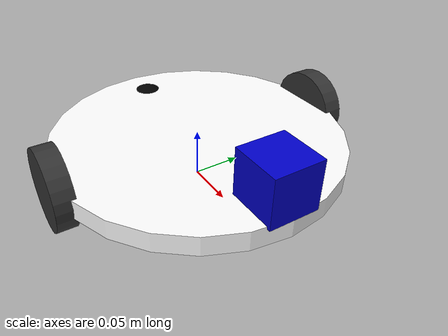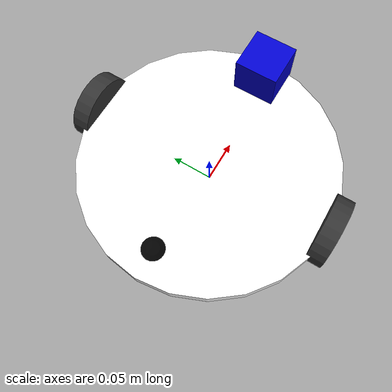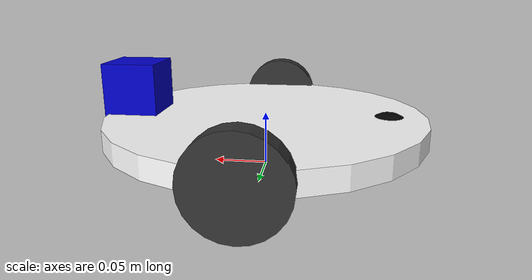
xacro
<?xml version="1.0"?>
<robot xmlns:xacro="http://www.ros.org/wiki/xacro" name="differential_wheeled_robot">
    <xacro:include filename="$(find mastering_ros_robot_description_pkg)/urdf/wheel.urdf.xacro"/>

    <!-- Defining the colors used in this robot -->
    <material name="Black">
        <color rgba="0.0 0.0 0.0 1.0"/>
    </material>

    <material name="Red">
        <color rgba="0.8 0.0 0.0 1.0"/>
    </material>

    <material name="White">
        <color rgba="1.0 1.0 1.0 1.0"/>
    </material>

    <material name="Blue">
        <color rgba="0.0 0.0 0.8 1.0"/>
    </material>

    <!-- PROPERTY LIST -->
    <!-- All units in m-kg-s-radians unit system -->
    <xacro:property name="M_PI" value="3.1415926535897931"/>
    <xacro:property name="M_PI_2" value="1.570796327"/>
    <xacro:property name="DEG_TO_RAD" value="0.017453293"/>

    <!-- Main body radius and height -->
    <!-- Main Body Cylinder base -->
    <xacro:property name="base_height" value="0.02"/>
    <xacro:property name="base_radius" value="0.15"/>
    <xacro:property name="base_mass" value="5"/>

    <!-- caster wheel radius and height -->
    <!-- caster wheel mass -->
    <xacro:property name="caster_f_height" value="0.04"/>
    <xacro:property name="caster_f_radius" value="0.025"/>
    <xacro:property name="caster_f_mass" value="0.5"/>

    <!-- caster wheel radius and height -->
    <!-- caster wheel mass -->
    <xacro:property name="caster_b_height" value="0.04"/>
    <xacro:property name="caster_b_radius" value="0.025"/>
    <xacro:property name="caster_b_mass" value="0.5"/>

    <!-- Wheels -->
    <xacro:property name="wheel_mass" value="2.5"/>

    <xacro:property name="base_x_origin_to_wheel_origin" value="0.25"/>
    <xacro:property name="base_y_origin_to_wheel_origin" value="0.3"/>
    <xacro:property name="base_z_origin_to_wheel_origin" value="0.0"/>

    <!-- Hokuyo Laser scanner -->
    <xacro:property name="hokuyo_size" value="0.05"/>

    <!-- Macro for calculating inertia of cylinder -->
    <xacro:macro name="cylinder_inertia" params="m r h">
        <inertia ixx="${m*(3*r*r+h*h)/12}" ixy="0.0" ixz="0.0" iyy="${m*(3*r*r+h*h)/12}" iyz="0.0" izz="${m*r*r/2}"/>
    </xacro:macro>

    <!-- BASE-FOOTPRINT -->
    <!-- base_footprint is a fictitious link(frame) that is on the ground right below base_link origin -->
    <link name="base_footprint">
        <inertial>
            <origin xyz="0.0 0.0 0.0" rpy="0.0 0.0 0.0"/>
            <mass value="0.0001"/>
            <inertia ixx="0.0001" ixy="0.0" ixz="0.0" iyy="0.0001" iyz="0.0" izz="0.0001"/>
        </inertial>
        <visual>
            <origin xyz="0.0 0.0 0.0" rpy="0.0 0.0 0.0"/>
            <geometry>
                <box size="0.0001 0.0001 0.0001"/>
            </geometry>
        </visual>
    </link>

    <gazebo reference="base_footprint">
        <turnGravityOff>false</turnGravityOff>
    </gazebo>

    <joint name="base_footprint_joint" type="fixed">
        <origin xyz="0.0 0.0 ${wheel_radius - base_z_origin_to_wheel_origin}" rpy="0.0 0.0 0.0"/>
        <parent link="base_footprint"/>
        <child link="base_link"/>
    </joint>

    <!-- BASE-LINK -->
    <!-- Actual body/chassis of the robot -->
    <link name="base_link">
        <inertial>
            <origin xyz="0.0 0.0 0.0" rpy="0.0 0.0 0.0"/>
            <mass value="${base_mass}"/>
            <xacro:cylinder_inertia m="${base_mass}" r="${base_radius}" h="${base_height}"/>
        </inertial>
        <visual>
            <origin xyz="0.0 0.0 0.0" rpy="0.0 0.0 0.0"/>
            <geometry>
                <cylinder radius="${base_radius}" length="${base_height}"/>
            </geometry>
            <material name="White"/>
        </visual>
        <collision>
            <origin xyz="0.0 0.0 0.0" rpy="0.0 0.0 0.0"/>
            <geometry>
                <cylinder radius="${base_radius}" length="${base_height}"/>
            </geometry>
        </collision>
    </link>

    <gazebo reference="base_link">
        <material>Gazebo/White</material>
        <turnGravityOff>false</turnGravityOff>
    </gazebo>

    <!-- Caster front -->
    <link name="caster_front_link">
        <visual>
            <origin xyz="0 0.02 0" rpy="${M_PI/2} 0 0" />
            <geometry>
                <sphere radius="${caster_f_radius}" />
            </geometry>
            <material name="Black" />
        </visual>
        <collision>
            <geometry>
                <sphere radius="${caster_f_radius}" />
            </geometry>
            <origin xyz="0 0.02 0" rpy="${M_PI/2} 0 0" />
        </collision>
        <inertial>
            <mass value="${caster_f_mass}" />
            <origin xyz="0 0 0" />
            <inertia ixx="0.001" ixy="0.0" ixz="0.0"
                    iyy="0.001" iyz="0.0"
                    izz="0.001" />
        </inertial>
    </link>

    <joint name="caster_front_joint" type="fixed">
        <parent link="base_link"/>
        <child link="caster_front_link"/>
        <origin xyz="0.115 0.0 0.007" rpy="${-M_PI/2} 0 0"/>
    </joint>

    <gazebo reference="caster_front_link">
        <turnGravityOff>false</turnGravityOff>
    </gazebo>

    <!-- Caster back -->
    <link name="caster_back_link">
        <visual>
            <origin xyz="0.02 0.02 0 " rpy="${M_PI/2} 0 0" />
            <geometry>
                <sphere radius="${caster_b_radius}" />
            </geometry>
            <material name="Black" />
        </visual>
        <collision>
            <geometry>
                <sphere radius="${caster_b_radius}" />
            </geometry>
            <origin xyz="0.02 0.02 0 " rpy="${M_PI/2} 0 0" />
        </collision>
        <inertial>
            <mass value="${caster_b_mass}" />
            <origin xyz="0 0 0" />
            <inertia ixx="0.001" ixy="0.0" ixz="0.0"
                    iyy="0.001" iyz="0.0"
                    izz="0.001" />
        </inertial>
    </link>

    <joint name="caster_back_joint" type="fixed">
        <parent link="base_link"/>
        <child link="caster_back_link"/>
        <origin xyz="-0.135 0.0 0.009" rpy="${-M_PI/2} 0 0"/>
    </joint>

    <gazebo reference="caster_back_link">
        <turnGravityOff>false</turnGravityOff>
    </gazebo>

    <!-- Wheel Definitions -->
    <xacro:wheel fb="front" lr="right" parent="base_link" translateX="0" translateY="-0.5" flipY="1"/>
    <xacro:wheel fb="front" lr="left" parent="base_link" translateX="0" translateY="0.5" flipY="1"/>

    <!-- SENSORS -->

    <!-- hokuyo -->

    <link name="hokuyo_link">
        <visual>
        <origin xyz="0 0 0" rpy="0 0 0" />
        <geometry>
            <box size="${hokuyo_size} ${hokuyo_size} ${hokuyo_size}"/>
        </geometry>
        <material name="Blue" />
        </visual>
    </link>
    <joint name="hokuyo_joint" type="fixed">
        <origin xyz="${base_radius - hokuyo_size/2} 0 ${base_height+hokuyo_size/4}" rpy="0 0 0" />
        <parent link="base_link"/>
        <child link="hokuyo_link" />
    </joint>
    <gazebo reference="hokuyo_link">
        <material>Gazebo/Blue</material>
        <turnGravityOff>false</turnGravityOff>
        <sensor type="ray" name="head_hokuyo_sensor">
        <pose>${hokuyo_size/2} 0 0 0 0 0</pose>
        <visualize>false</visualize>
        <update_rate>40</update_rate>
        <ray>
            <scan>
            <horizontal>
                <samples>720</samples>
                <resolution>1</resolution>
                <min_angle>-1.570796</min_angle>
                <max_angle>1.570796</max_angle>
            </horizontal>
            </scan>
            <range>
            <min>0.10</min>
            <max>10.0</max>
            <resolution>0.001</resolution>
            </range>
        </ray>
        <plugin name="gazebo_ros_head_hokuyo_controller" filename="libgazebo_ros_laser.so">
            <topicName>/scan</topicName>
            <frameName>hokuyo_link</frameName>
        </plugin>
        </sensor>
    </gazebo>

    <!-- Differential drive controller -->
    <gazebo>
        <plugin name="differential_drive_controller" filename="libgazebo_ros_diff_drive.so">
            <rosDebugLevel>Debug</rosDebugLevel>
            <publishWheelTF>false</publishWheelTF>
            <robotNamespace>/</robotNamespace>
            <publishTf>1</publishTf>
            <publishWheelJointState>false</publishWheelJointState>
            <alwaysOn>true</alwaysOn>
            <updateRate>100.0</updateRate>
            <leftJoint>front_left_wheel_joint</leftJoint>
            <rightJoint>front_right_wheel_joint</rightJoint>
            <wheelSeparation>${2*base_radius}</wheelSeparation>
            <wheelDiameter>${2*wheel_radius}</wheelDiameter>
            <broadcastTF>1</broadcastTF>
            <wheelTorque>30</wheelTorque>
            <wheelAcceleration>1.8</wheelAcceleration>
            <commandTopic>cmd_vel</commandTopic>
            <odometryFrame>odom</odometryFrame>
            <odometryTopic>odom</odometryTopic>
            <robotBaseFrame>base_footprint</robotBaseFrame>
        </plugin>
    </gazebo>

</robot>

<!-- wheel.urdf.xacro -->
<robot xmlns:xacro="http://www.ros.org/wiki/xacro" name="wheel">

    <material name="DarkGray">
        <color rgba="0.2 0.2 0.2 1.0"/>
    </material>

    <!-- Wheels -->
    <xacro:property name="wheel_radius" value="0.04"/>
    <xacro:property name="wheel_height" value="0.02"/>
    <xacro:property name="wheel_mass" value="2.5"/>

    <xacro:property name="base_x_origin_to_wheel_origin" value="0.25"/>
    <xacro:property name="base_y_origin_to_wheel_origin" value="0.3"/>
    <xacro:property name="base_z_origin_to_wheel_origin" value="0.0"/>

    <xacro:macro name="cylinder_inertia" params="m r h">
        <inertia ixx="${m*(3*r*r+h*h)/12}" ixy="0.0" ixz="0.0" iyy="${m*(3*r*r+h*h)/12}" iyz="0.0" izz="${m*r*r/2}"/>
    </xacro:macro>

    <xacro:macro name="wheel" params="fb lr parent translateX translateY flipY"> <!-- fb: front, back lr: left, right-->
        <link name="${fb}_${lr}_wheel">
            <visual>
                <origin xyz="0.0 0.0 0.0" rpy="${flipY*M_PI/2} 0.0 0.0"/>
                <geometry>
                    <cylinder radius="${wheel_radius}" length="${wheel_height}"/>
                </geometry>
                <material name="DarkGray"/>
            </visual>
            <collision>
                <origin xyz="0.0 0.0 0.0" rpy="${flipY*M_PI/2} 0.0 0.0"/>
                <geometry>
                    <cylinder radius="${wheel_radius}" length="${wheel_height}"/>
                </geometry>
            </collision>
            <inertial>
                <origin xyz="0.0 0.0 0.0" rpy="0.0 0.0 0.0"/>
                <mass value="${wheel_mass}"/>
                <xacro:cylinder_inertia  m="${wheel_mass}" r="${wheel_radius}" h="${wheel_height}" />
            </inertial>
        </link>

        <gazebo reference="${fb}_${lr}_wheel">
            <mu1 value="1.0"/>
            <mu2 value="1.0"/>
            <kp value="10000000.0"/>
            <kd value="1.0"/>
            <fdir1 value="1 0 0"/>
            <material>Gazebo/Grey</material>
            <turnGravityOff>false</turnGravityOff>
        </gazebo>

        <joint name="${fb}_${lr}_wheel_joint" type="continuous">
            <origin xyz="${translateX * base_x_origin_to_wheel_origin} ${translateY * base_y_origin_to_wheel_origin} ${base_z_origin_to_wheel_origin}" rpy="0.0 0.0 0.0"/>
            <parent link="${parent}"/>
            <child link="${fb}_${lr}_wheel"/>
            <axis xyz="0.0 1.0 0.0"/>
            <limit effort="100" velocity="100"/>
            <joint_properties damping="0.0" friction="0.0"/>
        </joint>

        <!-- Transmission is important to link the joints and the controller -->
        <transmission name="${fb}_${lr}_wheel_joint_trans">
            <type>transmission_interface/SimpleTransmission</type>
            <joint name="${fb}_${lr}_wheel_joint_trans">
                <hardwareInterface>hardware_interface/PositionJointInterface</hardwareInterface>
            </joint>
            <actuator name="${fb}_${lr}_wheel_joint_motor">
                <mechanicalReduction>1.0</mechanicalReduction>
                <hardwareInterface>EffortJointInterface</hardwareInterface>
            </actuator>
        </transmission>
    </xacro:macro>

</robot>
